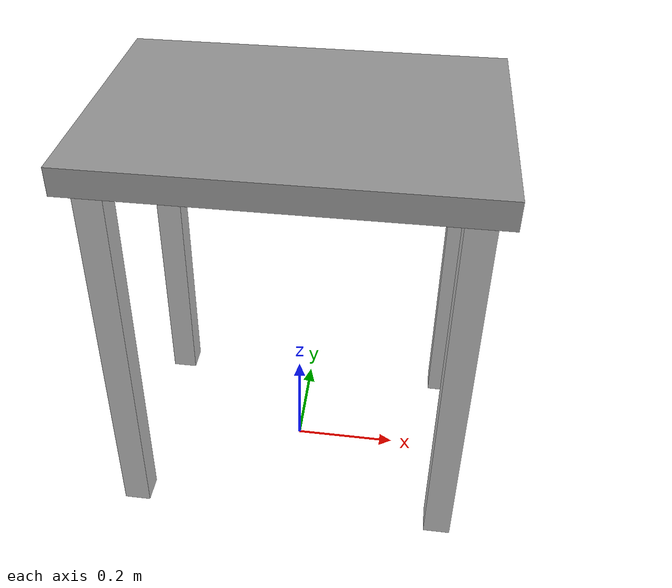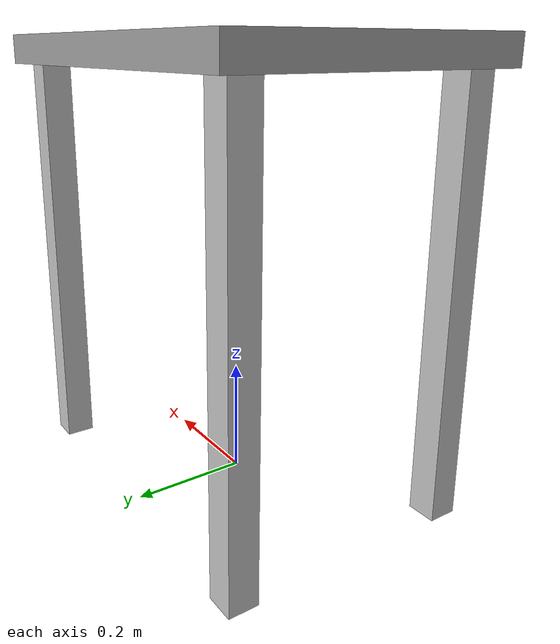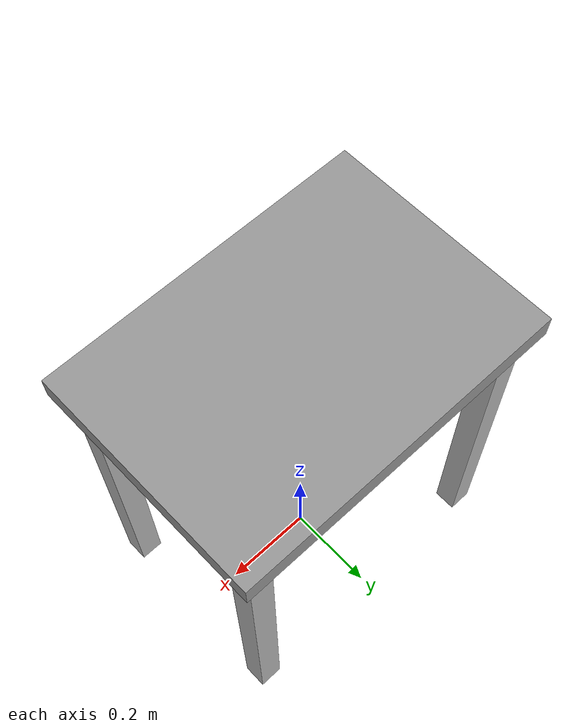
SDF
<?xml version="1.0"?>
<sdf version="1.7">
  <model name="work_table">
    <static>true</static>
    <link name="table_link">
      <visual name="top_visual">
        <pose>0 0 0.75 0 0 0</pose>
        <geometry>
          <box>
            <size>0.70 0.50 0.05</size>
          </box>
        </geometry>
        <material>
          <ambient>0.6 0.6 0.6 1</ambient>
          <diffuse>0.6 0.6 0.6 1</diffuse>
        </material>
      </visual>
      <visual name="leg_1_visual">
        <pose>0.30 0.20 0.375 0 0 0</pose>
        <geometry>
          <box>
            <size>0.05 0.05 0.75</size>
          </box>
        </geometry>
      </visual>
      <visual name="leg_2_visual">
        <pose>0.30 -0.20 0.375 0 0 0</pose>
        <geometry>
          <box>
            <size>0.05 0.05 0.75</size>
          </box>
        </geometry>
      </visual>
      <visual name="leg_3_visual">
        <pose>-0.30 0.20 0.375 0 0 0</pose>
        <geometry>
          <box>
            <size>0.05 0.05 0.75</size>
          </box>
        </geometry>
      </visual>
      <visual name="leg_4_visual">
        <pose>-0.30 -0.20 0.375 0 0 0</pose>
        <geometry>
          <box>
            <size>0.05 0.05 0.75</size>
          </box>
        </geometry>
      </visual>
    </link>
  </model>
</sdf>
